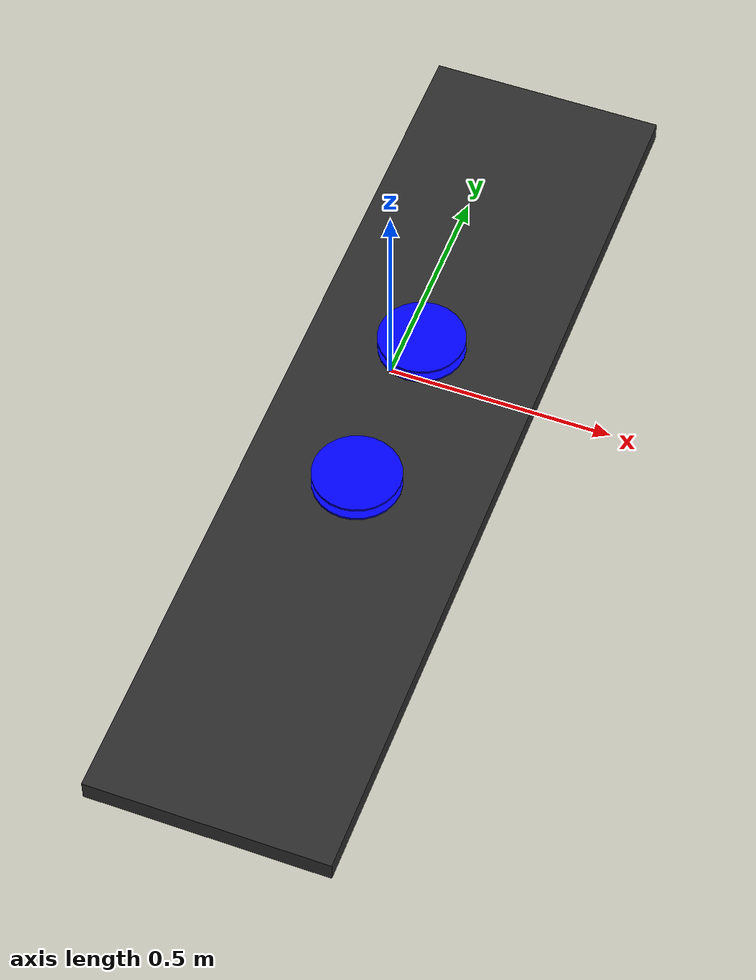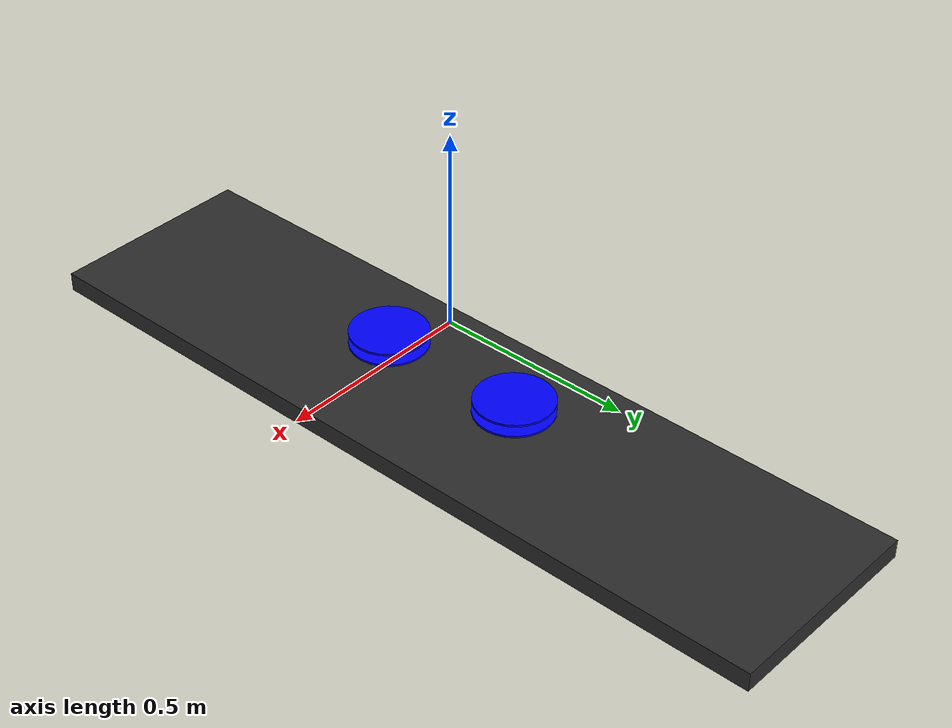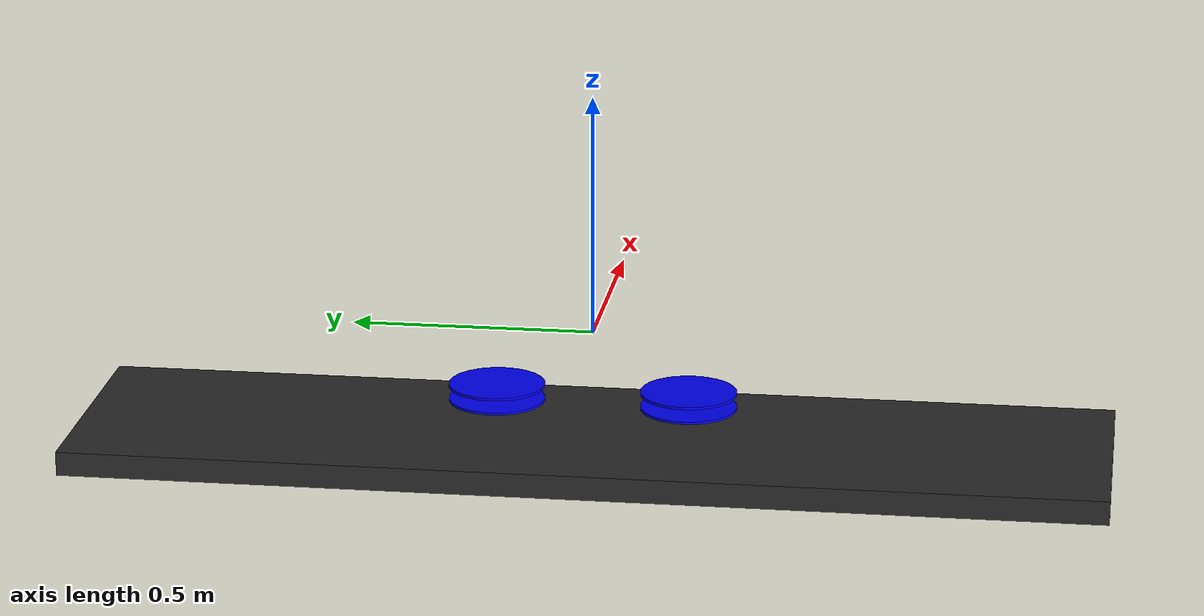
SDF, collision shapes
<?xml version="1.0" encoding="UTF-8"?>
<!-- DO NOT EDIT: Generated from standard_vtol.sdf.jinja -->
<sdf version='1.10'>
  <model name='bicopter'>
  <pose>0 0 -0.24 0 0 0</pose>
    <link name='base_link'>
      <inertial>
        <mass>1</mass>
        <inertia>
          <ixx>0.02166666666666667</ixx>
          <ixy>0</ixy>
          <ixz>0</ixz>
          <iyy>0.02166666666666667</iyy>
          <iyz>0</iyz>
          <izz>0.04000000000000001</izz>
        </inertia>
      </inertial>
      <collision name='base_link_collision'>
        <geometry>
          <box>
            <size>0.55 2.144 0.05</size>
          </box>
        </geometry>
        <surface>
          <contact>
            <ode>
              <max_vel>0</max_vel>
              <min_depth>0.001</min_depth>
            </ode>
          </contact>
          <friction>
            <ode/>
          </friction>
        </surface>
      </collision>
      <visual name='base_link_visual'>
        <geometry>
          <mesh>
            <scale>0.001 0.001 0.001</scale>
            <uri>model://bicopter/meshes/CAD/Base.stl</uri>
          </mesh>
        </geometry>
        <material>
          <ambient>.175 .175 .175 1.0</ambient>
          <diffuse>.175 .175 .175 1.0</diffuse>
        </material>
      </visual>
      <gravity>true</gravity>
      <velocity_decay/>
      <self_collide>0</self_collide>
      <sensor name="imu_sensor" type="imu">
        <always_on>1</always_on>
        <update_rate>250</update_rate>
        <imu>
          <angular_velocity>
            <x>
              <noise type="gaussian">
                <mean>0</mean>
                <stddev>0.0003394</stddev>
                <dynamic_bias_stddev>3.8785e-05</dynamic_bias_stddev>
                <dynamic_bias_correlation_time>1000</dynamic_bias_correlation_time>
              </noise>
            </x>
            <y>
              <noise type="gaussian">
                <mean>0</mean>
                <stddev>0.0003394</stddev>
                <dynamic_bias_stddev>3.8785e-05</dynamic_bias_stddev>
                <dynamic_bias_correlation_time>1000</dynamic_bias_correlation_time>
              </noise>
            </y>
            <z>
              <noise type="gaussian">
                <mean>0</mean>
                <stddev>0.0003394</stddev>
                <dynamic_bias_stddev>3.8785e-05</dynamic_bias_stddev>
                <dynamic_bias_correlation_time>1000</dynamic_bias_correlation_time>
              </noise>
            </z>
          </angular_velocity>
          <linear_acceleration>
            <x>
              <noise type="gaussian">
                <mean>0</mean>
                <stddev>0.004</stddev>
                <dynamic_bias_stddev>0.006</dynamic_bias_stddev>
                <dynamic_bias_correlation_time>300</dynamic_bias_correlation_time>
              </noise>
            </x>
            <y>
              <noise type="gaussian">
                <mean>0</mean>
                <stddev>0.004</stddev>
                <dynamic_bias_stddev>0.006</dynamic_bias_stddev>
                <dynamic_bias_correlation_time>300</dynamic_bias_correlation_time>
              </noise>
            </y>
            <z>
              <noise type="gaussian">
                <mean>0</mean>
                <stddev>0.004</stddev>
                <dynamic_bias_stddev>0.006</dynamic_bias_stddev>
                <dynamic_bias_correlation_time>300</dynamic_bias_correlation_time>
              </noise>
            </z>
          </linear_acceleration>
        </imu>
      </sensor>
      <sensor name="air_pressure_sensor" type="air_pressure">
        <always_on>1</always_on>
        <update_rate>50</update_rate>
        <air_pressure>
          <pressure>
            <noise type="gaussian">
              <mean>0</mean>
              <stddev>0.01</stddev>
            </noise>
          </pressure>
        </air_pressure>
      </sensor>
      <sensor name="navsat_sensor" type="navsat">
        <always_on>1</always_on>
        <update_rate>30</update_rate>
      </sensor>
    </link>

    <link name='prop1'>
      <pose>-9.036680063686122e-05 0.200 0.11893393233816349 0.0 -0.0 0.0</pose>
      <inertial>
        <mass>0.016076923076923075</mass>
        <inertia>
          <ixx>3.8464910483993325e-07</ixx>
          <iyy>2.6115851691700804e-05</iyy>
          <izz>2.649858234714004e-05</izz>
        </inertia>
      </inertial>
      <collision name='prop1_collision'>
        <geometry>
          <cylinder>
            <length>0.005</length>
            <radius>0.1</radius>
          </cylinder>
        </geometry>
        <surface>
          <contact>
            <ode/>
          </contact>
          <friction>
            <ode/>
          </friction>
        </surface>
      </collision>
      <visual name='prop1_visual'>
        <geometry>
          <mesh>
            <scale>0.001 0.001 0.001</scale>
            <uri>model://bicopter/meshes/CAD/Prop1.stl</uri>
          </mesh>
        </geometry>
        <material>
          <ambient>0 0 1 1.0</ambient>
          <diffuse>0 0 1 1.0</diffuse>
        </material>
      </visual>
      <gravity>true</gravity>
      <velocity_decay/>
      <self_collide>0</self_collide>
    </link>
    <joint name='prop1_joint' type='revolute'>
      <child>prop1</child>
      <parent>right_motor</parent>
      <pose>-7.662759549274465e-08 -2.2088590501567753e-06 0.0011497181763331988 0 0 0</pose>
      <axis>
        <xyz>0 0 1</xyz>
        <limit>
          <lower>-1e+16</lower>
          <upper>1e+16</upper>
        </limit>
        <dynamics>
          <spring_reference>0</spring_reference>
          <spring_stiffness>0</spring_stiffness>
        </dynamics>
      </axis>
    </joint>

    <link name='prop2'>
      <pose>-0.0018565808764078734 -0.200 0.11891615606227482 0.0 -0.0 0.0</pose>
      <inertial>
        <mass>0.016076923076923075</mass>
        <inertia>
          <ixx>3.8464910483993325e-07</ixx>
          <iyy>2.6115851691700804e-05</iyy>
          <izz>2.649858234714004e-05</izz>
        </inertia>
      </inertial>
      <collision name='prop2_collision'>
        <geometry>
          <cylinder>
            <length>0.005</length>
            <radius>0.1</radius>
          </cylinder>
        </geometry>
        <surface>
          <contact>
            <ode/>
          </contact>
          <friction>
            <ode/>
          </friction>
        </surface>
      </collision>
      <visual name='prop2_visual'>
        <geometry>
          <mesh>
            <scale>0.001 0.001 0.001</scale>
            <uri>model://bicopter/meshes/CAD/Prop2.stl</uri>
          </mesh>
        </geometry>
        <material>
          <ambient>0 0 1 1.0</ambient>
          <diffuse>0 0 1 1.0</diffuse>
        </material>
      </visual>
      <gravity>true</gravity>
      <velocity_decay/>
      <self_collide>0</self_collide>
    </link>
    <joint name='prop2_joint' type='revolute'>
      <child>prop2</child>
      <parent>left_motor</parent>
      <pose>0.0018565808764078734 0.00021386973639528517 -0.00011891615606227482 0 0 0</pose>
      <axis>
        <xyz>0 0 1</xyz>
        <limit>
          <lower>-1e+16</lower>
          <upper>1e+16</upper>
        </limit>
        <dynamics>
          <spring_reference>0</spring_reference>
          <spring_stiffness>0</spring_stiffness>
        </dynamics>
      </axis>
    </joint>

    <link name="left_motor">
    <self_collide>false</self_collide>
    <pose>-0.0018503180795652564 -0.2000 0.08750066333507596 0.0 -0.0 0.0</pose>
      <inertial>
        <mass>0.016076923076923075</mass>
        <inertia>
          <ixx>3.8464910483993325e-07</ixx>
          <iyy>2.6115851691700804e-05</iyy>
          <izz>2.649858234714004e-05</izz>
        </inertia>
      </inertial>
      <collision name='left_motor_collision'>
        <geometry>
          <cylinder>
            <length>0.005</length>
            <radius>0.1</radius>
          </cylinder>
        </geometry>
        <surface>
          <contact>
            <ode/>
          </contact>
          <friction>
            <ode/>
          </friction>
        </surface>
      </collision>
      <visual name='left_motor_visual'>
        <geometry>
          <mesh>
            <scale>0.001 0.001 0.001</scale>
            <uri>model://bicopter/meshes/CAD/left_motor.stl</uri>
          </mesh>
        </geometry>
        <material>
          <ambient>0 0 1 1.0</ambient>
          <diffuse>0 0 1 1.0</diffuse>
        </material>
      </visual>
    </link>
    <link name="right_motor">
    <self_collide>false</self_collide>
    <pose>0.0005984060134381001 0.2000 0.08752609926565091 0.0 -0.0 0.0</pose>
      <inertial>
        <mass>0.016076923076923075</mass>
        <inertia>
            <ixx>3.8464910483993325e-07</ixx>
            <iyy>2.6115851691700804e-05</iyy>
            <izz>2.649858234714004e-05</izz>
        </inertia>
      </inertial>
      <collision name='right_motor_collision'>
        <geometry>
          <cylinder>
            <length>0.005</length>
            <radius>0.1</radius>
          </cylinder>
        </geometry>
        <surface>
          <contact>
            <ode/>
          </contact>
          <friction>
            <ode/>
          </friction>
        </surface>
      </collision>
      <visual name='right_motor_visual'>
        <geometry>
          <mesh>
            <scale>0.001 0.001 0.001</scale>
            <uri>model://bicopter/meshes/CAD/right_motor.stl</uri>
          </mesh>
        </geometry>
        <material>
          <ambient>0 0 1 1.0</ambient>
          <diffuse>0 0 1 1.0</diffuse>
        </material>
      </visual>
    </link>
    <joint name='servo_0' type='revolute'>
      <parent>base_link</parent>
      <child>left_motor</child>
      <pose>0.0017004874751392273 0.02115363083829493 -0.04755094629310131 0 0 0</pose>
      <axis>
        <xyz>0 1 0</xyz>
        <limit>
          <lower>-0.785</lower>
          <upper>0.785</upper>
        </limit>
        <dynamics>
          <damping>0.1</damping>
        </dynamics>
      </axis>
      <physics>
        <ode>
          <implicit_spring_damper>0</implicit_spring_damper>
        </ode>
      </physics>
    </joint>
    <joint name='servo_1' type='revolute'>
      <parent>base_link</parent>
      <child>right_motor</child>
      <pose>-0.0006054495817779899 -0.021143599237930105 -0.04914311840568893 0 0 0</pose>
      <axis>
        <xyz>0 1 0</xyz>
        <limit>
          <lower>-0.785</lower>
          <upper>0.785</upper>
        </limit>
        <dynamics>
          <damping>0.1</damping>
        </dynamics>
      </axis>
      <physics>
        <ode>
          <implicit_spring_damper>0</implicit_spring_damper>
        </ode>
      </physics>
    </joint>

    <plugin filename="gz-sim-lift-drag-system" name="gz::sim::systems::LiftDrag">
      <a0>0.05984281113</a0>
      <cla>4.752798721</cla>
      <cda>0.6417112299</cda>
      <cma>0.0</cma>
      <alpha_stall>0.3391428111</alpha_stall>
      <cla_stall>-3.85</cla_stall>
      <cda_stall>-0.9233984055</cda_stall>
      <cma_stall>0</cma_stall>
      <cp>-0.05 0.3 0.05</cp>
      <area>0.50</area>
      <air_density>1.2041</air_density>
      <forward>1 0 0</forward>
      <upward>0 0 1</upward>
      <link_name>base_link</link_name>
      <control_joint_name>servo_0</control_joint_name>
      <control_joint_rad_to_cl>-1.0</control_joint_rad_to_cl>
    </plugin>
    <plugin
      filename="gz-sim-joint-position-controller-system" name="gz::sim::systems::JointPositionController">
      <joint_name>servo_0</joint_name>
      <sub_topic>servo_0</sub_topic>
    </plugin>
    <plugin filename="gz-sim-lift-drag-system" name="gz::sim::systems::LiftDrag">
      <a0>0.05984281113</a0>
      <cla>4.752798721</cla>
      <cda>0.6417112299</cda>
      <cma>0.0</cma>
      <alpha_stall>0.3391428111</alpha_stall>
      <cla_stall>-3.85</cla_stall>
      <cda_stall>-0.9233984055</cda_stall>
      <cma_stall>0</cma_stall>
      <cp>-0.05 -0.3 0.05</cp>
      <area>0.50</area>
      <air_density>1.2041</air_density>
      <forward>1 0 0</forward>
      <upward>0 0 1</upward>
      <link_name>base_link</link_name>
      <control_joint_name>servo_1</control_joint_name>
      <control_joint_rad_to_cl>-1.0</control_joint_rad_to_cl>
    </plugin>
    <plugin
      filename="gz-sim-joint-position-controller-system" name="gz::sim::systems::JointPositionController">
      <joint_name>servo_1</joint_name>
      <sub_topic>servo_1</sub_topic>
    </plugin>

    <plugin filename="gz-sim-multicopter-motor-model-system" name="gz::sim::systems::MulticopterMotorModel">
      <jointName>prop1_joint</jointName>
      <linkName>prop1</linkName>
      <turningDirection>ccw</turningDirection>
      <timeConstantUp>0.0125</timeConstantUp>
      <timeConstantDown>0.025</timeConstantDown>
      <maxRotVelocity>1000</maxRotVelocity>
      <motorConstant>8.54858e-06</motorConstant>
      <momentConstant>0.016</momentConstant>
      <commandSubTopic>command/motor_speed</commandSubTopic>
      <motorNumber>0</motorNumber>
      <rotorDragCoefficient>8.06428e-05</rotorDragCoefficient>
      <rollingMomentCoefficient>1e-06</rollingMomentCoefficient>
      <rotorVelocitySlowdownSim>10</rotorVelocitySlowdownSim>
      <motorType>velocity</motorType>
    </plugin>

    <plugin filename="gz-sim-multicopter-motor-model-system" name="gz::sim::systems::MulticopterMotorModel">
      <jointName>prop2_joint</jointName>
      <linkName>prop2</linkName>
      <turningDirection>cw</turningDirection>
      <timeConstantUp>0.0125</timeConstantUp>
      <timeConstantDown>0.025</timeConstantDown>
      <maxRotVelocity>1000</maxRotVelocity>
      <motorConstant>8.54858e-06</motorConstant>
      <momentConstant>0.016</momentConstant>
      <commandSubTopic>command/motor_speed</commandSubTopic>
      <motorNumber>1</motorNumber>
      <rotorDragCoefficient>8.06428e-05</rotorDragCoefficient>
      <rollingMomentCoefficient>1e-06</rollingMomentCoefficient>
      <rotorVelocitySlowdownSim>10</rotorVelocitySlowdownSim>
      <motorType>velocity</motorType>
    </plugin>

    <static>0</static>
  </model>
</sdf>
